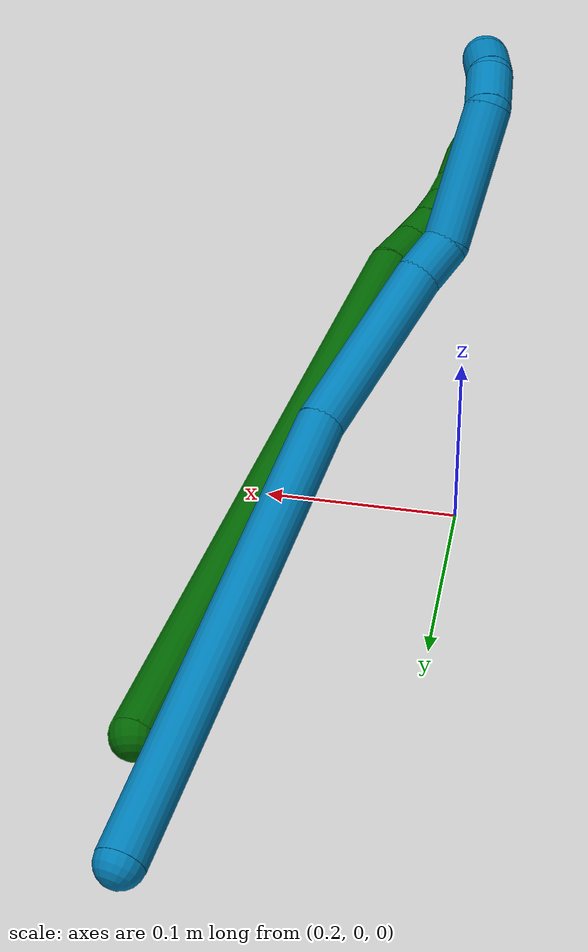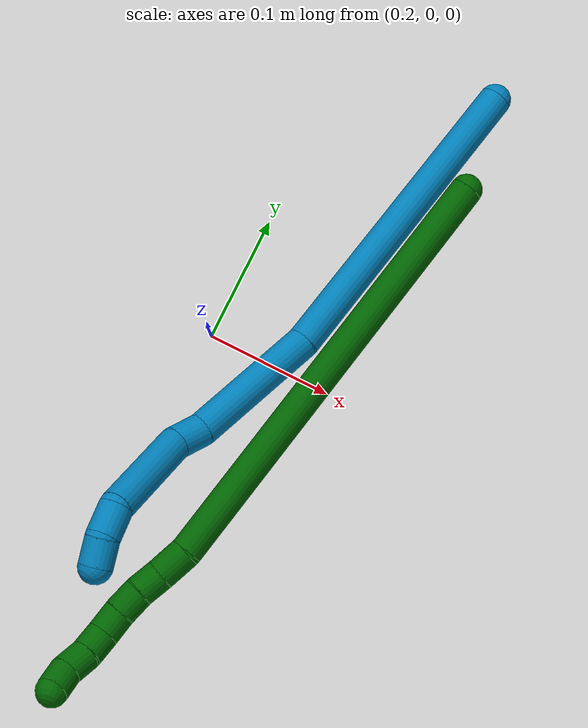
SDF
<sdf version="1.7">
 <world name="default">
  <model name="6">
   <static>0</static>
   <link name="6">
    <collision name="collision-cylinder-e_1_1_4">
     <pose>0.034638 -0.074885 -0.155819 2.6936 0.197738 0.821285</pose>
     <geometry><cylinder><radius>0.0125</radius><length>0.352631</length></cylinder></geometry>
     <surface>
      <friction><ode><mu>1.16</mu><mu2>1.16</mu2><slip1>0</slip1><slip2>0</slip2></ode></friction>
      <contact><ode><kp>1e+06</kp><kd>1</kd><max_vel>0</max_vel><min_depth>0.001</min_depth></ode></contact>
     </surface>
    </collision>
    <visual name="visual-cylinder-e_1_1_4">
     <pose>0.034638 -0.074885 -0.155819 2.6936 0.197738 0.821285</pose>
     <geometry><cylinder><radius>0.0125</radius><length>0.352631</length></cylinder></geometry>
     <material><ambient>0 0.392157 0.003922 1</ambient></material>
    </visual>
    <collision name="collision-cylinder-e_2_4_5">
     <pose>0.073545 -0.156784 -0.321504 2.52354 0.33909 0.984391</pose>
     <geometry><cylinder><radius>0.0125</radius><length>0.025671</length></cylinder></geometry>
     <surface>
      <friction><ode><mu>1.16</mu><mu2>1.16</mu2><slip1>0</slip1><slip2>0</slip2></ode></friction>
      <contact><ode><kp>1e+06</kp><kd>1</kd><max_vel>0</max_vel><min_depth>0.001</min_depth></ode></contact>
     </surface>
    </collision>
    <visual name="visual-cylinder-e_2_4_5">
     <pose>0.073545 -0.156784 -0.321504 2.52354 0.33909 0.984391</pose>
     <geometry><cylinder><radius>0.0125</radius><length>0.025671</length></cylinder></geometry>
     <material><ambient>0 0.392157 0.003922 1</ambient></material>
    </visual>
    <collision name="collision-cylinder-e_3_5_6">
     <pose>0.081895 -0.168458 -0.339316 2.61123 0.416997 1.32367</pose>
     <geometry><cylinder><radius>0.0125</radius><length>0.020152</length></cylinder></geometry>
     <surface>
      <friction><ode><mu>1.16</mu><mu2>1.16</mu2><slip1>0</slip1><slip2>0</slip2></ode></friction>
      <contact><ode><kp>1e+06</kp><kd>1</kd><max_vel>0</max_vel><min_depth>0.001</min_depth></ode></contact>
     </surface>
    </collision>
    <visual name="visual-cylinder-e_3_5_6">
     <pose>0.081895 -0.168458 -0.339316 2.61123 0.416997 1.32367</pose>
     <geometry><cylinder><radius>0.0125</radius><length>0.020152</length></cylinder></geometry>
     <material><ambient>0 0.392157 0.003922 1</ambient></material>
    </visual>
    <collision name="collision-cylinder-e_4_6_7">
     <pose>0.08877 -0.178004 -0.3558 2.62179 0.276777 0.964957</pose>
     <geometry><cylinder><radius>0.0125</radius><length>0.020451</length></cylinder></geometry>
     <surface>
      <friction><ode><mu>1.16</mu><mu2>1.16</mu2><slip1>0</slip1><slip2>0</slip2></ode></friction>
      <contact><ode><kp>1e+06</kp><kd>1</kd><max_vel>0</max_vel><min_depth>0.001</min_depth></ode></contact>
     </surface>
    </collision>
    <visual name="visual-cylinder-e_4_6_7">
     <pose>0.08877 -0.178004 -0.3558 2.62179 0.276777 0.964957</pose>
     <geometry><cylinder><radius>0.0125</radius><length>0.020451</length></cylinder></geometry>
     <material><ambient>0 0.392157 0.003922 1</ambient></material>
    </visual>
    <collision name="collision-cylinder-e_5_7_8">
     <pose>0.093592 -0.187281 -0.373366 2.68893 0.199292 0.819206</pose>
     <geometry><cylinder><radius>0.0125</radius><length>0.020486</length></cylinder></geometry>
     <surface>
      <friction><ode><mu>1.16</mu><mu2>1.16</mu2><slip1>0</slip1><slip2>0</slip2></ode></friction>
      <contact><ode><kp>1e+06</kp><kd>1</kd><max_vel>0</max_vel><min_depth>0.001</min_depth></ode></contact>
     </surface>
    </collision>
    <visual name="visual-cylinder-e_5_7_8">
     <pose>0.093592 -0.187281 -0.373366 2.68893 0.199292 0.819206</pose>
     <geometry><cylinder><radius>0.0125</radius><length>0.020486</length></cylinder></geometry>
     <material><ambient>0 0.392157 0.003922 1</ambient></material>
    </visual>
    <collision name="collision-cylinder-e_6_8_9">
     <pose>0.098855 -0.192391 -0.391975 3.06663 0.324867 2.69167</pose>
     <geometry><cylinder><radius>0.0125</radius><length>0.020273</length></cylinder></geometry>
     <surface>
      <friction><ode><mu>1.16</mu><mu2>1.16</mu2><slip1>0</slip1><slip2>0</slip2></ode></friction>
      <contact><ode><kp>1e+06</kp><kd>1</kd><max_vel>0</max_vel><min_depth>0.001</min_depth></ode></contact>
     </surface>
    </collision>
    <visual name="visual-cylinder-e_6_8_9">
     <pose>0.098855 -0.192391 -0.391975 3.06663 0.324867 2.69167</pose>
     <geometry><cylinder><radius>0.0125</radius><length>0.020273</length></cylinder></geometry>
     <material><ambient>0 0.392157 0.003922 1</ambient></material>
    </visual>
    <collision name="collision-cylinder-e_7_9_10">
     <pose>0.106909 -0.194246 -0.410365 3.01348 0.496976 2.64634</pose>
     <geometry><cylinder><radius>0.0125</radius><length>0.020213</length></cylinder></geometry>
     <surface>
      <friction><ode><mu>1.16</mu><mu2>1.16</mu2><slip1>0</slip1><slip2>0</slip2></ode></friction>
      <contact><ode><kp>1e+06</kp><kd>1</kd><max_vel>0</max_vel><min_depth>0.001</min_depth></ode></contact>
     </surface>
    </collision>
    <visual name="visual-cylinder-e_7_9_10">
     <pose>0.106909 -0.194246 -0.410365 3.01348 0.496976 2.64634</pose>
     <geometry><cylinder><radius>0.0125</radius><length>0.020213</length></cylinder></geometry>
     <material><ambient>0 0.392157 0.003922 1</ambient></material>
    </visual>
    <collision name="collision-cylinder-e_8_10_2">
     <pose>0.114563 -0.194063 -0.428739 -3.00464 0.285697 -2.25167</pose>
     <geometry><cylinder><radius>0.0125</radius><length>0.020124</length></cylinder></geometry>
     <surface>
      <friction><ode><mu>1.16</mu><mu2>1.16</mu2><slip1>0</slip1><slip2>0</slip2></ode></friction>
      <contact><ode><kp>1e+06</kp><kd>1</kd><max_vel>0</max_vel><min_depth>0.001</min_depth></ode></contact>
     </surface>
    </collision>
    <visual name="visual-cylinder-e_8_10_2">
     <pose>0.114563 -0.194063 -0.428739 -3.00464 0.285697 -2.25167</pose>
     <geometry><cylinder><radius>0.0125</radius><length>0.020124</length></cylinder></geometry>
     <material><ambient>0 0.392157 0.003922 1</ambient></material>
    </visual>
    <collision name="collision-sphere-2">
     <pose>0.117399 -0.192745 -0.438303 0 -0 0</pose>
     <geometry><sphere><radius>0.0125</radius></sphere></geometry>
     <surface>
      <friction><ode><mu>1.16</mu><mu2>1.16</mu2><slip1>0</slip1><slip2>0</slip2></ode></friction>
      <contact><ode><kp>1e+06</kp><kd>1</kd><max_vel>0</max_vel><min_depth>0.001</min_depth></ode></contact>
     </surface>
    </collision>
    <visual name="visual-sphere-2">
     <pose>0.117399 -0.192745 -0.438303 0 -0 0</pose>
     <geometry><sphere><radius>0.0125</radius></sphere></geometry>
     <material><ambient>0 0.392157 0.003922 1</ambient></material>
    </visual>
    <collision name="collision-sphere-10">
     <pose>0.111728 -0.195381 -0.419176 0 -0 0</pose>
     <geometry><sphere><radius>0.0125</radius></sphere></geometry>
     <surface>
      <friction><ode><mu>1.16</mu><mu2>1.16</mu2><slip1>0</slip1><slip2>0</slip2></ode></friction>
      <contact><ode><kp>1e+06</kp><kd>1</kd><max_vel>0</max_vel><min_depth>0.001</min_depth></ode></contact>
     </surface>
    </collision>
    <visual name="visual-sphere-10">
     <pose>0.111728 -0.195381 -0.419176 0 -0 0</pose>
     <geometry><sphere><radius>0.0125</radius></sphere></geometry>
     <material><ambient>0 0.392157 0.003922 1</ambient></material>
    </visual>
    <collision name="collision-sphere-9">
     <pose>0.102091 -0.193111 -0.401554 0 -0 0</pose>
     <geometry><sphere><radius>0.0125</radius></sphere></geometry>
     <surface>
      <friction><ode><mu>1.16</mu><mu2>1.16</mu2><slip1>0</slip1><slip2>0</slip2></ode></friction>
      <contact><ode><kp>1e+06</kp><kd>1</kd><max_vel>0</max_vel><min_depth>0.001</min_depth></ode></contact>
     </surface>
    </collision>
    <visual name="visual-sphere-9">
     <pose>0.102091 -0.193111 -0.401554 0 -0 0</pose>
     <geometry><sphere><radius>0.0125</radius></sphere></geometry>
     <material><ambient>0 0.392157 0.003922 1</ambient></material>
    </visual>
    <collision name="collision-sphere-4">
     <pose>0.069275 -0.149769 -0.311638 0 -0 0</pose>
     <geometry><sphere><radius>0.0125</radius></sphere></geometry>
     <surface>
      <friction><ode><mu>1.16</mu><mu2>1.16</mu2><slip1>0</slip1><slip2>0</slip2></ode></friction>
      <contact><ode><kp>1e+06</kp><kd>1</kd><max_vel>0</max_vel><min_depth>0.001</min_depth></ode></contact>
     </surface>
    </collision>
    <visual name="visual-sphere-4">
     <pose>0.069275 -0.149769 -0.311638 0 -0 0</pose>
     <geometry><sphere><radius>0.0125</radius></sphere></geometry>
     <material><ambient>0 0.392157 0.003922 1</ambient></material>
    </visual>
    <collision name="collision-sphere-1">
     <geometry><sphere><radius>0.0125</radius></sphere></geometry>
     <surface>
      <friction><ode><mu>1.16</mu><mu2>1.16</mu2><slip1>0</slip1><slip2>0</slip2></ode></friction>
      <contact><ode><kp>1e+06</kp><kd>1</kd><max_vel>0</max_vel><min_depth>0.001</min_depth></ode></contact>
     </surface>
    </collision>
    <visual name="visual-sphere-1">
     <geometry><sphere><radius>0.0125</radius></sphere></geometry>
     <material><ambient>0 0.392157 0.003922 1</ambient></material>
    </visual>
    <collision name="collision-sphere-8">
     <pose>0.09562 -0.191672 -0.382395 0 -0 0</pose>
     <geometry><sphere><radius>0.0125</radius></sphere></geometry>
     <surface>
      <friction><ode><mu>1.16</mu><mu2>1.16</mu2><slip1>0</slip1><slip2>0</slip2></ode></friction>
      <contact><ode><kp>1e+06</kp><kd>1</kd><max_vel>0</max_vel><min_depth>0.001</min_depth></ode></contact>
     </surface>
    </collision>
    <visual name="visual-sphere-8">
     <pose>0.09562 -0.191672 -0.382395 0 -0 0</pose>
     <geometry><sphere><radius>0.0125</radius></sphere></geometry>
     <material><ambient>0 0.392157 0.003922 1</ambient></material>
    </visual>
    <collision name="collision-sphere-5">
     <pose>0.077814 -0.163798 -0.331369 0 -0 0</pose>
     <geometry><sphere><radius>0.0125</radius></sphere></geometry>
     <surface>
      <friction><ode><mu>1.16</mu><mu2>1.16</mu2><slip1>0</slip1><slip2>0</slip2></ode></friction>
      <contact><ode><kp>1e+06</kp><kd>1</kd><max_vel>0</max_vel><min_depth>0.001</min_depth></ode></contact>
     </surface>
    </collision>
    <visual name="visual-sphere-5">
     <pose>0.077814 -0.163798 -0.331369 0 -0 0</pose>
     <geometry><sphere><radius>0.0125</radius></sphere></geometry>
     <material><ambient>0 0.392157 0.003922 1</ambient></material>
    </visual>
    <collision name="collision-sphere-6">
     <pose>0.085976 -0.173118 -0.347263 0 -0 0</pose>
     <geometry><sphere><radius>0.0125</radius></sphere></geometry>
     <surface>
      <friction><ode><mu>1.16</mu><mu2>1.16</mu2><slip1>0</slip1><slip2>0</slip2></ode></friction>
      <contact><ode><kp>1e+06</kp><kd>1</kd><max_vel>0</max_vel><min_depth>0.001</min_depth></ode></contact>
     </surface>
    </collision>
    <visual name="visual-sphere-6">
     <pose>0.085976 -0.173118 -0.347263 0 -0 0</pose>
     <geometry><sphere><radius>0.0125</radius></sphere></geometry>
     <material><ambient>0 0.392157 0.003922 1</ambient></material>
    </visual>
    <collision name="collision-sphere-7">
     <pose>0.091564 -0.18289 -0.364337 0 -0 0</pose>
     <geometry><sphere><radius>0.0125</radius></sphere></geometry>
     <surface>
      <friction><ode><mu>1.16</mu><mu2>1.16</mu2><slip1>0</slip1><slip2>0</slip2></ode></friction>
      <contact><ode><kp>1e+06</kp><kd>1</kd><max_vel>0</max_vel><min_depth>0.001</min_depth></ode></contact>
     </surface>
    </collision>
    <visual name="visual-sphere-7">
     <pose>0.091564 -0.18289 -0.364337 0 -0 0</pose>
     <geometry><sphere><radius>0.0125</radius></sphere></geometry>
     <material><ambient>0 0.392157 0.003922 1</ambient></material>
    </visual>
    <inertial>
     <pose>0.051912 -0.10607 -0.219664 0 -0 0</pose>
     <mass>0.5</mass>
     <inertia>
      <ixx>0.005098</ixx>
      <ixy>0</ixy>
      <ixz>0</ixz>
      <iyy>0.000601</iyy>
      <iyz>0</iyz>
      <izz>0.000803</izz>
     </inertia>
    </inertial>
   </link>
   <pose>0.325547 0.189432 0.01231 2.03858 -0.358103 3.13121</pose>
  </model>
  <model name="9">
   <static>0</static>
   <link name="9">
    <collision name="collision-cylinder-e_1_1_4">
     <pose>0.02316 0.005237 -0.124151 -3.09944 0.184271 -2.69294</pose>
     <geometry><cylinder><radius>0.0125</radius><length>0.252802</length></cylinder></geometry>
     <surface>
      <friction><ode><mu>1.16</mu><mu2>1.16</mu2><slip1>0</slip1><slip2>0</slip2></ode></friction>
      <contact><ode><kp>1e+06</kp><kd>1</kd><max_vel>0</max_vel><min_depth>0.001</min_depth></ode></contact>
     </surface>
    </collision>
    <visual name="visual-cylinder-e_1_1_4">
     <pose>0.02316 0.005237 -0.124151 -3.09944 0.184271 -2.69294</pose>
     <geometry><cylinder><radius>0.0125</radius><length>0.252802</length></cylinder></geometry>
     <material><ambient>0 0.490196 0.709804 1</ambient></material>
    </visual>
    <collision name="collision-cylinder-e_2_4_5">
     <pose>0.049089 0.019088 -0.298963 -2.97317 0.053824 -0.617398</pose>
     <geometry><cylinder><radius>0.0125</radius><length>0.102925</length></cylinder></geometry>
     <surface>
      <friction><ode><mu>1.16</mu><mu2>1.16</mu2><slip1>0</slip1><slip2>0</slip2></ode></friction>
      <contact><ode><kp>1e+06</kp><kd>1</kd><max_vel>0</max_vel><min_depth>0.001</min_depth></ode></contact>
     </surface>
    </collision>
    <visual name="visual-cylinder-e_2_4_5">
     <pose>0.049089 0.019088 -0.298963 -2.97317 0.053824 -0.617398</pose>
     <geometry><cylinder><radius>0.0125</radius><length>0.102925</length></cylinder></geometry>
     <material><ambient>0 0.490196 0.709804 1</ambient></material>
    </visual>
    <collision name="collision-cylinder-e_3_5_6">
     <pose>0.049491 0.030591 -0.360762 -2.88787 -0.202888 1.34713</pose>
     <geometry><cylinder><radius>0.0125</radius><length>0.023495</length></cylinder></geometry>
     <surface>
      <friction><ode><mu>1.16</mu><mu2>1.16</mu2><slip1>0</slip1><slip2>0</slip2></ode></friction>
      <contact><ode><kp>1e+06</kp><kd>1</kd><max_vel>0</max_vel><min_depth>0.001</min_depth></ode></contact>
     </surface>
    </collision>
    <visual name="visual-cylinder-e_3_5_6">
     <pose>0.049491 0.030591 -0.360762 -2.88787 -0.202888 1.34713</pose>
     <geometry><cylinder><radius>0.0125</radius><length>0.023495</length></cylinder></geometry>
     <material><ambient>0 0.490196 0.709804 1</ambient></material>
    </visual>
    <collision name="collision-cylinder-e_4_6_7">
     <pose>0.038564 0.028192 -0.408885 2.99959 -0.225211 -2.01879</pose>
     <geometry><cylinder><radius>0.0125</radius><length>0.076659</length></cylinder></geometry>
     <surface>
      <friction><ode><mu>1.16</mu><mu2>1.16</mu2><slip1>0</slip1><slip2>0</slip2></ode></friction>
      <contact><ode><kp>1e+06</kp><kd>1</kd><max_vel>0</max_vel><min_depth>0.001</min_depth></ode></contact>
     </surface>
    </collision>
    <visual name="visual-cylinder-e_4_6_7">
     <pose>0.038564 0.028192 -0.408885 2.99959 -0.225211 -2.01879</pose>
     <geometry><cylinder><radius>0.0125</radius><length>0.076659</length></cylinder></geometry>
     <material><ambient>0 0.490196 0.709804 1</ambient></material>
    </visual>
    <collision name="collision-cylinder-e_5_7_8">
     <pose>0.032977 0.020431 -0.457014 2.92324 0.254704 1.72562</pose>
     <geometry><cylinder><radius>0.0125</radius><length>0.02359</length></cylinder></geometry>
     <surface>
      <friction><ode><mu>1.16</mu><mu2>1.16</mu2><slip1>0</slip1><slip2>0</slip2></ode></friction>
      <contact><ode><kp>1e+06</kp><kd>1</kd><max_vel>0</max_vel><min_depth>0.001</min_depth></ode></contact>
     </surface>
    </collision>
    <visual name="visual-cylinder-e_5_7_8">
     <pose>0.032977 0.020431 -0.457014 2.92324 0.254704 1.72562</pose>
     <geometry><cylinder><radius>0.0125</radius><length>0.02359</length></cylinder></geometry>
     <material><ambient>0 0.490196 0.709804 1</ambient></material>
    </visual>
    <collision name="collision-cylinder-e_6_8_2">
     <pose>0.041836 0.015882 -0.476305 2.892 0.610812 2.38418</pose>
     <geometry><cylinder><radius>0.0125</radius><length>0.020528</length></cylinder></geometry>
     <surface>
      <friction><ode><mu>1.16</mu><mu2>1.16</mu2><slip1>0</slip1><slip2>0</slip2></ode></friction>
      <contact><ode><kp>1e+06</kp><kd>1</kd><max_vel>0</max_vel><min_depth>0.001</min_depth></ode></contact>
     </surface>
    </collision>
    <visual name="visual-cylinder-e_6_8_2">
     <pose>0.041836 0.015882 -0.476305 2.892 0.610812 2.38418</pose>
     <geometry><cylinder><radius>0.0125</radius><length>0.020528</length></cylinder></geometry>
     <material><ambient>0 0.490196 0.709804 1</ambient></material>
    </visual>
    <collision name="collision-sphere-2">
     <pose>0.047723 0.013805 -0.484453 0 -0 0</pose>
     <geometry><sphere><radius>0.0125</radius></sphere></geometry>
     <surface>
      <friction><ode><mu>1.16</mu><mu2>1.16</mu2><slip1>0</slip1><slip2>0</slip2></ode></friction>
      <contact><ode><kp>1e+06</kp><kd>1</kd><max_vel>0</max_vel><min_depth>0.001</min_depth></ode></contact>
     </surface>
    </collision>
    <visual name="visual-sphere-2">
     <pose>0.047723 0.013805 -0.484453 0 -0 0</pose>
     <geometry><sphere><radius>0.0125</radius></sphere></geometry>
     <material><ambient>0 0.490196 0.709804 1</ambient></material>
    </visual>
    <collision name="collision-sphere-4">
     <pose>0.046321 0.010474 -0.248302 0 -0 0</pose>
     <geometry><sphere><radius>0.0125</radius></sphere></geometry>
     <surface>
      <friction><ode><mu>1.16</mu><mu2>1.16</mu2><slip1>0</slip1><slip2>0</slip2></ode></friction>
      <contact><ode><kp>1e+06</kp><kd>1</kd><max_vel>0</max_vel><min_depth>0.001</min_depth></ode></contact>
     </surface>
    </collision>
    <visual name="visual-sphere-4">
     <pose>0.046321 0.010474 -0.248302 0 -0 0</pose>
     <geometry><sphere><radius>0.0125</radius></sphere></geometry>
     <material><ambient>0 0.490196 0.709804 1</ambient></material>
    </visual>
    <collision name="collision-sphere-1">
     <geometry><sphere><radius>0.0125</radius></sphere></geometry>
     <surface>
      <friction><ode><mu>1.16</mu><mu2>1.16</mu2><slip1>0</slip1><slip2>0</slip2></ode></friction>
      <contact><ode><kp>1e+06</kp><kd>1</kd><max_vel>0</max_vel><min_depth>0.001</min_depth></ode></contact>
     </surface>
    </collision>
    <visual name="visual-sphere-1">
     <geometry><sphere><radius>0.0125</radius></sphere></geometry>
     <material><ambient>0 0.490196 0.709804 1</ambient></material>
    </visual>
    <collision name="collision-sphere-8">
     <pose>0.035949 0.017959 -0.468158 0 -0 0</pose>
     <geometry><sphere><radius>0.0125</radius></sphere></geometry>
     <surface>
      <friction><ode><mu>1.16</mu><mu2>1.16</mu2><slip1>0</slip1><slip2>0</slip2></ode></friction>
      <contact><ode><kp>1e+06</kp><kd>1</kd><max_vel>0</max_vel><min_depth>0.001</min_depth></ode></contact>
     </surface>
    </collision>
    <visual name="visual-sphere-8">
     <pose>0.035949 0.017959 -0.468158 0 -0 0</pose>
     <geometry><sphere><radius>0.0125</radius></sphere></geometry>
     <material><ambient>0 0.490196 0.709804 1</ambient></material>
    </visual>
    <collision name="collision-sphere-5">
     <pose>0.051858 0.027702 -0.349624 0 -0 0</pose>
     <geometry><sphere><radius>0.0125</radius></sphere></geometry>
     <surface>
      <friction><ode><mu>1.16</mu><mu2>1.16</mu2><slip1>0</slip1><slip2>0</slip2></ode></friction>
      <contact><ode><kp>1e+06</kp><kd>1</kd><max_vel>0</max_vel><min_depth>0.001</min_depth></ode></contact>
     </surface>
    </collision>
    <visual name="visual-sphere-5">
     <pose>0.051858 0.027702 -0.349624 0 -0 0</pose>
     <geometry><sphere><radius>0.0125</radius></sphere></geometry>
     <material><ambient>0 0.490196 0.709804 1</ambient></material>
    </visual>
    <collision name="collision-sphere-6">
     <pose>0.047124 0.033479 -0.3719 0 -0 0</pose>
     <geometry><sphere><radius>0.0125</radius></sphere></geometry>
     <surface>
      <friction><ode><mu>1.16</mu><mu2>1.16</mu2><slip1>0</slip1><slip2>0</slip2></ode></friction>
      <contact><ode><kp>1e+06</kp><kd>1</kd><max_vel>0</max_vel><min_depth>0.001</min_depth></ode></contact>
     </surface>
    </collision>
    <visual name="visual-sphere-6">
     <pose>0.047124 0.033479 -0.3719 0 -0 0</pose>
     <geometry><sphere><radius>0.0125</radius></sphere></geometry>
     <material><ambient>0 0.490196 0.709804 1</ambient></material>
    </visual>
    <collision name="collision-sphere-7">
     <pose>0.030005 0.022904 -0.445871 0 -0 0</pose>
     <geometry><sphere><radius>0.0125</radius></sphere></geometry>
     <surface>
      <friction><ode><mu>1.16</mu><mu2>1.16</mu2><slip1>0</slip1><slip2>0</slip2></ode></friction>
      <contact><ode><kp>1e+06</kp><kd>1</kd><max_vel>0</max_vel><min_depth>0.001</min_depth></ode></contact>
     </surface>
    </collision>
    <visual name="visual-sphere-7">
     <pose>0.030005 0.022904 -0.445871 0 -0 0</pose>
     <geometry><sphere><radius>0.0125</radius></sphere></geometry>
     <material><ambient>0 0.490196 0.709804 1</ambient></material>
    </visual>
    <inertial>
     <pose>0.033327 0.013953 -0.245072 0 -0 0</pose>
     <mass>0.5</mass>
     <inertia>
      <ixx>-0.001802</ixx>
      <ixy>0</ixy>
      <ixz>0</ixz>
      <iyy>0.000507</iyy>
      <iyz>0</iyz>
      <izz>-0.00035</izz>
     </inertia>
    </inertial>
   </link>
   <pose>0.313988 0.262802 0.011797 -2.32519 0.938522 -0.889499</pose>
  </model>
 </world>
</sdf>
